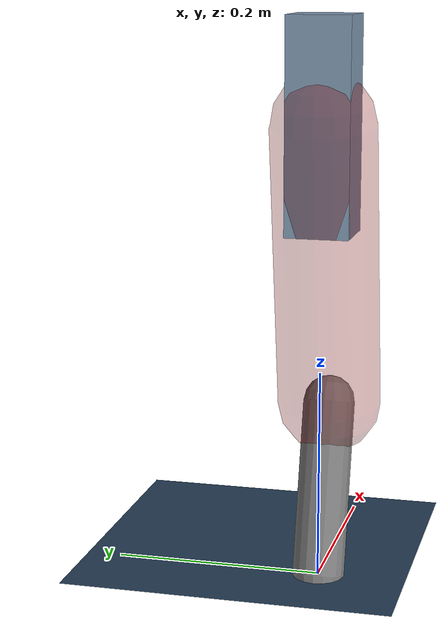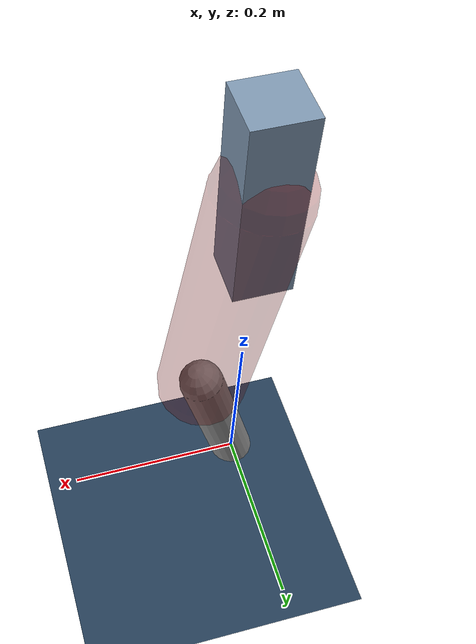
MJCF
<mujoco model="Hopper2D">
	<compiler inertiafromgeom="true" angle="radian" />
	<option timestep="0.001" integrator="implicit" cone="elliptic" solver="Newton" tolerance="1e-10" />

	<default>
		<geom contype="1" conaffinity="1" condim="3" friction="2 0.005 0.0001" solref="0.005 1" />
		<joint limited="true" damping="0.1" />
	</default>

	<asset>
		<texture name="skybox" type="skybox" builtin="gradient" rgb1=".4 .6 .8" rgb2="0 0 0" width="800" height="800" />
		<texture name="grid" type="2d" builtin="checker" rgb1=".1 .2 .3" rgb2=".2 .3 .4" width="300" height="300" mark="edge" markrgb=".2 .3 .4" />
		<material name="ground" texture="grid" texrepeat="1 1" texuniform="true" reflectance="0.1" />
		<material name="leg" rgba="0.5 0.6 0.7 1" />
	</asset>

	<worldbody>

		<geom name="floor" type="plane" size="5 5 0.25" material="ground" />

		<light directional="false" diffuse="0.8 0.8 0.8" specular="0.3 0.3 0.3" pos="0 0 2" dir="0 0 -1" />
		<light mode="targetbodycom" target="base" directional="false" diffuse="0.8 0.8 0.8" specular="0.3 0.3 0.3" pos="0 0 2" dir="0 0 -1" />

		<camera name="fixed" pos="0 -2 1" xyaxes="1 0 0 0 0 1" />
		<camera name="tracking" mode="trackcom" pos="0 -3 1" />

		<body name="root" pos="0 0 0.43236538926529233">
			<joint name="slide_x" type="slide" axis="1 0 0" range="-100 100" />
			<joint name="slide_z" type="slide" axis="0 0 1" range="0 10" />

			<body name="base" pos="0 0 0">
				<geom name="torso" type="box" size="0.03 0.03 0.1" mass="3.238" material="leg" />

				<body name="link1" pos="0 0 0" euler="0 1.4053509804169604 0">
					<joint type="hinge" axis="0 -1 0" pos="0 0 0" name="hinge1" limited="true" range="-3.14 3.14" stiffness="0" damping="0.1" />
					<geom name="thigh" type="capsule" fromto="0 0 0 0.2750050737827432 0 0" size="0.05" rgba="0.5 0 0 0.3" mass="0.9219131918351323" />

					<body name="link2" pos="0.2750050737827432 0 0" euler="0 0.4394822296610445 0">
						<joint type="hinge" axis="0 -1 0" pos="0 0 0" name="hinge2" limited="true" range="-3.14 3.14" stiffness="0" damping="0.1" />
						<geom name="shank" type="capsule" fromto="0 0 0 0.16736031548254915 0 0" size="0.025" mass="0.3729882523860393" />

					</body>
				</body>
			</body>
		</body>
	</worldbody>

	<actuator>
		<motor name="torque1" joint="hinge1" ctrlrange="-141.30289306711305 141.30289306711305" ctrllimited="true" gear="1" />
		<motor name="torque2" joint="hinge2" ctrlrange="-99.19209879620165 99.19209879620165" ctrllimited="true" gear="1" />
	</actuator>
</mujoco>
